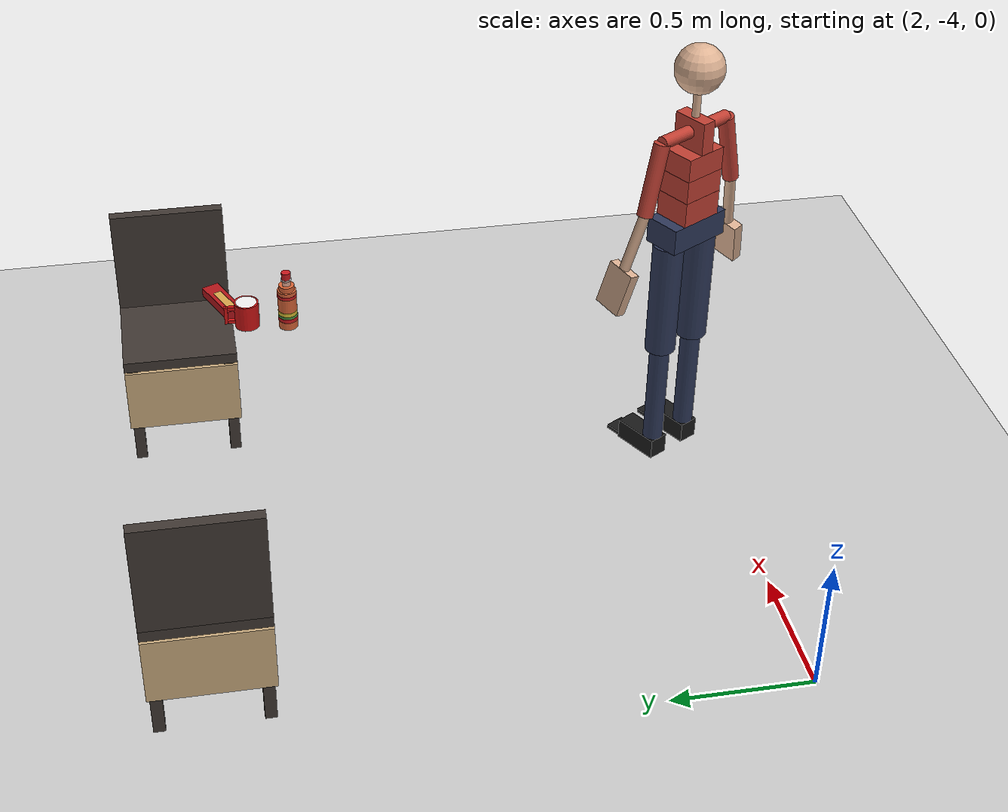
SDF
<sdf version="1.6">
 <world name="robocup_casa">
  <include><uri>model://sun</uri></include>
  <include><uri>model://ground_plane</uri></include>
  <model name="silla_o">
   <static>true</static>
   <link name="l0">
    <pose>2.346 -2.030 0.275 0 0 0.0000</pose>
    <collision name="c"><geometry><box><size>0.420 0.420 0.250</size></box></geometry></collision>
    <visual name="v">
     <geometry><box><size>0.420 0.420 0.250</size></box></geometry>
     <material><ambient>0.80 0.68 0.50 1</ambient><diffuse>0.80 0.68 0.50 1</diffuse></material>
    </visual>
   </link>
   <link name="l1">
    <pose>2.346 -2.030 0.430 0 0 0.0000</pose>
    <collision name="c"><geometry><box><size>0.420 0.420 0.040</size></box></geometry></collision>
    <visual name="v">
     <geometry><box><size>0.420 0.420 0.040</size></box></geometry>
     <material><ambient>0.25 0.22 0.20 1</ambient><diffuse>0.25 0.22 0.20 1</diffuse></material>
    </visual>
   </link>
   <link name="l2">
    <pose>2.166 -2.210 0.205 0 0 0.0000</pose>
    <collision name="c"><geometry><box><size>0.040 0.040 0.410</size></box></geometry></collision>
    <visual name="v">
     <geometry><box><size>0.040 0.040 0.410</size></box></geometry>
     <material><ambient>0.25 0.22 0.20 1</ambient><diffuse>0.25 0.22 0.20 1</diffuse></material>
    </visual>
   </link>
   <link name="l3">
    <pose>2.166 -1.850 0.205 0 0 0.0000</pose>
    <collision name="c"><geometry><box><size>0.040 0.040 0.410</size></box></geometry></collision>
    <visual name="v">
     <geometry><box><size>0.040 0.040 0.410</size></box></geometry>
     <material><ambient>0.25 0.22 0.20 1</ambient><diffuse>0.25 0.22 0.20 1</diffuse></material>
    </visual>
   </link>
   <link name="l4">
    <pose>2.526 -2.210 0.205 0 0 0.0000</pose>
    <collision name="c"><geometry><box><size>0.040 0.040 0.410</size></box></geometry></collision>
    <visual name="v">
     <geometry><box><size>0.040 0.040 0.410</size></box></geometry>
     <material><ambient>0.25 0.22 0.20 1</ambient><diffuse>0.25 0.22 0.20 1</diffuse></material>
    </visual>
   </link>
   <link name="l5">
    <pose>2.526 -1.850 0.205 0 0 0.0000</pose>
    <collision name="c"><geometry><box><size>0.040 0.040 0.410</size></box></geometry></collision>
    <visual name="v">
     <geometry><box><size>0.040 0.040 0.410</size></box></geometry>
     <material><ambient>0.25 0.22 0.20 1</ambient><diffuse>0.25 0.22 0.20 1</diffuse></material>
    </visual>
   </link>
   <link name="l6">
    <pose>2.156 -2.030 0.650 0 0 0.0000</pose>
    <collision name="c"><geometry><box><size>0.040 0.420 0.400</size></box></geometry></collision>
    <visual name="v">
     <geometry><box><size>0.040 0.420 0.400</size></box></geometry>
     <material><ambient>0.25 0.22 0.20 1</ambient><diffuse>0.25 0.22 0.20 1</diffuse></material>
    </visual>
   </link>
  </model>
  <model name="silla_e">
   <static>true</static>
   <link name="l0">
    <pose>3.786 -2.030 0.275 0 0 3.1416</pose>
    <collision name="c"><geometry><box><size>0.420 0.420 0.250</size></box></geometry></collision>
    <visual name="v">
     <geometry><box><size>0.420 0.420 0.250</size></box></geometry>
     <material><ambient>0.80 0.68 0.50 1</ambient><diffuse>0.80 0.68 0.50 1</diffuse></material>
    </visual>
   </link>
   <link name="l1">
    <pose>3.786 -2.030 0.430 0 0 3.1416</pose>
    <collision name="c"><geometry><box><size>0.420 0.420 0.040</size></box></geometry></collision>
    <visual name="v">
     <geometry><box><size>0.420 0.420 0.040</size></box></geometry>
     <material><ambient>0.25 0.22 0.20 1</ambient><diffuse>0.25 0.22 0.20 1</diffuse></material>
    </visual>
   </link>
   <link name="l2">
    <pose>3.966 -1.850 0.205 0 0 3.1416</pose>
    <collision name="c"><geometry><box><size>0.040 0.040 0.410</size></box></geometry></collision>
    <visual name="v">
     <geometry><box><size>0.040 0.040 0.410</size></box></geometry>
     <material><ambient>0.25 0.22 0.20 1</ambient><diffuse>0.25 0.22 0.20 1</diffuse></material>
    </visual>
   </link>
   <link name="l3">
    <pose>3.966 -2.210 0.205 0 0 3.1416</pose>
    <collision name="c"><geometry><box><size>0.040 0.040 0.410</size></box></geometry></collision>
    <visual name="v">
     <geometry><box><size>0.040 0.040 0.410</size></box></geometry>
     <material><ambient>0.25 0.22 0.20 1</ambient><diffuse>0.25 0.22 0.20 1</diffuse></material>
    </visual>
   </link>
   <link name="l4">
    <pose>3.606 -1.850 0.205 0 0 3.1416</pose>
    <collision name="c"><geometry><box><size>0.040 0.040 0.410</size></box></geometry></collision>
    <visual name="v">
     <geometry><box><size>0.040 0.040 0.410</size></box></geometry>
     <material><ambient>0.25 0.22 0.20 1</ambient><diffuse>0.25 0.22 0.20 1</diffuse></material>
    </visual>
   </link>
   <link name="l5">
    <pose>3.606 -2.210 0.205 0 0 3.1416</pose>
    <collision name="c"><geometry><box><size>0.040 0.040 0.410</size></box></geometry></collision>
    <visual name="v">
     <geometry><box><size>0.040 0.040 0.410</size></box></geometry>
     <material><ambient>0.25 0.22 0.20 1</ambient><diffuse>0.25 0.22 0.20 1</diffuse></material>
    </visual>
   </link>
   <link name="l6">
    <pose>3.976 -2.030 0.650 0 0 3.1416</pose>
    <collision name="c"><geometry><box><size>0.040 0.420 0.400</size></box></geometry></collision>
    <visual name="v">
     <geometry><box><size>0.040 0.420 0.400</size></box></geometry>
     <material><ambient>0.25 0.22 0.20 1</ambient><diffuse>0.25 0.22 0.20 1</diffuse></material>
    </visual>
   </link>
  </model>
  <model name="taza_comedor">
   <pose>3.313 -2.277 0.751 0 0 1.556</pose>
   <link name="link">
    <inertial>
     <pose>0 0 0.0475 0 0 0</pose>
     <mass>0.3</mass>
     <inertia>
      <ixx>3.643e-04</ixx>
      <iyy>3.643e-04</iyy>
      <izz>2.773e-04</izz>
      <ixy>0</ixy>
      <ixz>0</ixz>
      <iyz>0</iyz>
     </inertia>
    </inertial>
    <collision name="c">
     <pose>0 0 0.0475 0 0 0</pose>
     <geometry><cylinder><radius>0.0430</radius><length>0.0950</length></cylinder></geometry>
     <surface><friction><ode><mu>1.0</mu><mu2>1.0</mu2></ode></friction></surface>
    </collision>
    <visual name="v0">
     <pose>0 0 0.0475 0 0 0</pose>
     <geometry><cylinder><radius>0.0430</radius><length>0.0950</length></cylinder></geometry>
     <material><ambient>0.82 0.08 0.08 1</ambient><diffuse>0.82 0.08 0.08 1</diffuse></material>
    </visual>
    <visual name="v1">
     <pose>0 0 0.0945 0 0 0</pose>
     <geometry><cylinder><radius>0.0370</radius><length>0.0020</length></cylinder></geometry>
     <material><ambient>0.95 0.95 0.95 1</ambient><diffuse>0.95 0.95 0.95 1</diffuse></material>
    </visual>
    <visual name="v2">
     <pose>0.073 0 0.048 0 0 0</pose>
     <geometry><box><size>0.0120 0.0140 0.0660</size></box></geometry>
     <material><ambient>0.82 0.08 0.08 1</ambient><diffuse>0.82 0.08 0.08 1</diffuse></material>
    </visual>
    <visual name="v3">
     <pose>0.058 0 0.075 0 0 0</pose>
     <geometry><box><size>0.0320 0.0140 0.0120</size></box></geometry>
     <material><ambient>0.82 0.08 0.08 1</ambient><diffuse>0.82 0.08 0.08 1</diffuse></material>
    </visual>
    <visual name="v4">
     <pose>0.058 0 0.021 0 0 0</pose>
     <geometry><box><size>0.0320 0.0140 0.0120</size></box></geometry>
     <material><ambient>0.82 0.08 0.08 1</ambient><diffuse>0.82 0.08 0.08 1</diffuse></material>
    </visual>
   </link>
  </model>
  <model name="botella_comedor">
   <pose>3.285 -2.419 0.751 0 0 2.356</pose>
   <link name="link">
    <inertial>
     <pose>0 0 0.1100 0 0 0</pose>
     <mass>0.55</mass>
     <inertia>
      <ixx>2.368e-03</ixx>
      <iyy>2.368e-03</iyy>
      <izz>2.995e-04</izz>
      <ixy>0</ixy>
      <ixz>0</ixz>
      <iyz>0</iyz>
     </inertia>
    </inertial>
    <collision name="c">
     <pose>0 0 0.1100 0 0 0</pose>
     <geometry><cylinder><radius>0.0330</radius><length>0.2200</length></cylinder></geometry>
     <surface><friction><ode><mu>1.0</mu><mu2>1.0</mu2></ode></friction></surface>
    </collision>
    <visual name="v0">
     <pose>0 0 0.075 0 0 0</pose>
     <geometry><cylinder><radius>0.0330</radius><length>0.1500</length></cylinder></geometry>
     <material><ambient>0.86 0.40 0.22 1</ambient><diffuse>0.86 0.40 0.22 1</diffuse></material>
    </visual>
    <visual name="v1">
     <pose>0 0 0.16 0 0 0</pose>
     <geometry><cylinder><radius>0.0270</radius><length>0.0200</length></cylinder></geometry>
     <material><ambient>0.86 0.40 0.22 1</ambient><diffuse>0.86 0.40 0.22 1</diffuse></material>
    </visual>
    <visual name="v2">
     <pose>0 0 0.182 0 0 0</pose>
     <geometry><cylinder><radius>0.0150</radius><length>0.0250</length></cylinder></geometry>
     <transparency>0.4</transparency>
     <material><ambient>0.75 0.78 0.80 1</ambient><diffuse>0.75 0.78 0.80 1</diffuse></material>
    </visual>
    <visual name="v3">
     <pose>0 0 0.192 0 0 0</pose>
     <geometry><cylinder><radius>0.0190</radius><length>0.0040</length></cylinder></geometry>
     <transparency>0.2</transparency>
     <material><ambient>0.75 0.78 0.80 1</ambient><diffuse>0.75 0.78 0.80 1</diffuse></material>
    </visual>
    <visual name="v4">
     <pose>0 0 0.2075 0 0 0</pose>
     <geometry><cylinder><radius>0.0160</radius><length>0.0250</length></cylinder></geometry>
     <material><ambient>0.80 0.10 0.12 1</ambient><diffuse>0.80 0.10 0.12 1</diffuse></material>
    </visual>
    <visual name="v5">
     <pose>0 0 0.13 0 0 0</pose>
     <geometry><cylinder><radius>0.0340</radius><length>0.0120</length></cylinder></geometry>
     <material><ambient>0.80 0.10 0.12 1</ambient><diffuse>0.80 0.10 0.12 1</diffuse></material>
    </visual>
    <visual name="v6">
     <pose>0 0 0.0625 0 0 0</pose>
     <geometry><cylinder><radius>0.0340</radius><length>0.0150</length></cylinder></geometry>
     <material><ambient>0.85 0.75 0.20 1</ambient><diffuse>0.85 0.75 0.20 1</diffuse></material>
    </visual>
    <visual name="v7">
     <pose>0 0 0.05 0 0 0</pose>
     <geometry><cylinder><radius>0.0340</radius><length>0.0100</length></cylinder></geometry>
     <material><ambient>0.30 0.60 0.25 1</ambient><diffuse>0.30 0.60 0.25 1</diffuse></material>
    </visual>
    <visual name="v8">
     <pose>0 0 0.0375 0 0 0</pose>
     <geometry><cylinder><radius>0.0340</radius><length>0.0150</length></cylinder></geometry>
     <material><ambient>0.80 0.10 0.12 1</ambient><diffuse>0.80 0.10 0.12 1</diffuse></material>
    </visual>
   </link>
  </model>
  <model name="galletas_comedor">
   <pose>3.448 -2.200 0.751 0 0 -2.727</pose>
   <link name="link">
    <inertial>
     <pose>0 0 0.0175 0 0 0</pose>
     <mass>0.13</mass>
     <inertia>
      <ixx>5.491e-05</ixx>
      <iyy>4.044e-04</iyy>
      <izz>4.327e-04</izz>
      <ixy>0</ixy>
      <ixz>0</ixz>
      <iyz>0</iyz>
     </inertia>
    </inertial>
    <collision name="c">
     <pose>0 0 0.0175 0 0 0</pose>
     <geometry><box><size>0.1900 0.0620 0.0350</size></box></geometry>
     <surface><friction><ode><mu>1.0</mu><mu2>1.0</mu2></ode></friction></surface>
    </collision>
    <visual name="v0">
     <pose>0 0 0.0175 0 0 0</pose>
     <geometry><box><size>0.1900 0.0620 0.0350</size></box></geometry>
     <material><ambient>0.70 0.08 0.10 1</ambient><diffuse>0.70 0.08 0.10 1</diffuse></material>
    </visual>
    <visual name="v1">
     <pose>0.02 0 0.0355 0 0 0</pose>
     <geometry><box><size>0.1200 0.0300 0.0010</size></box></geometry>
     <material><ambient>0.85 0.65 0.30 1</ambient><diffuse>0.85 0.65 0.30 1</diffuse></material>
    </visual>
   </link>
  </model>
  <model name="persona_comedor">
   <static>true</static>
   <link name="cuerpo">
    <collision name="c0">
     <pose>3.3419 -3.8615 0.9823 0.0000 -0.0000 0.5190</pose>
     <geometry><box><size>0.1381 0.2491 0.0975</size></box></geometry>
    </collision>
    <visual name="v0_Pelvis">
     <pose>3.3419 -3.8615 0.9823 0.0000 -0.0000 0.5190</pose>
     <geometry><box><size>0.1381 0.2491 0.0975</size></box></geometry>
     <material><ambient>0.18 0.22 0.35 1</ambient><diffuse>0.18 0.22 0.35 1</diffuse></material>
    </visual>
    <collision name="c1">
     <pose>3.3418 -3.8616 1.0786 0.0000 -0.0000 0.5190</pose>
     <geometry><box><size>0.1381 0.1632 0.0951</size></box></geometry>
    </collision>
    <visual name="v1_L5">
     <pose>3.3418 -3.8616 1.0786 0.0000 -0.0000 0.5190</pose>
     <geometry><box><size>0.1381 0.1632 0.0951</size></box></geometry>
     <material><ambient>0.75 0.25 0.20 1</ambient><diffuse>0.75 0.25 0.20 1</diffuse></material>
    </visual>
    <collision name="c2">
     <pose>3.3421 -3.8614 1.1691 0.0000 -0.0000 0.5190</pose>
     <geometry><box><size>0.1381 0.1632 0.0859</size></box></geometry>
    </collision>
    <visual name="v2_L3">
     <pose>3.3421 -3.8614 1.1691 0.0000 -0.0000 0.5190</pose>
     <geometry><box><size>0.1381 0.1632 0.0859</size></box></geometry>
     <material><ambient>0.75 0.25 0.20 1</ambient><diffuse>0.75 0.25 0.20 1</diffuse></material>
    </visual>
    <collision name="c3">
     <pose>3.3421 -3.8614 1.2550 0.0000 -0.0000 0.5190</pose>
     <geometry><box><size>0.1381 0.1632 0.0859</size></box></geometry>
    </collision>
    <visual name="v3_T12">
     <pose>3.3421 -3.8614 1.2550 0.0000 -0.0000 0.5190</pose>
     <geometry><box><size>0.1381 0.1632 0.0859</size></box></geometry>
     <material><ambient>0.75 0.25 0.20 1</ambient><diffuse>0.75 0.25 0.20 1</diffuse></material>
    </visual>
    <collision name="c4">
     <pose>3.3421 -3.8614 1.3578 0.0000 -0.0000 0.5190</pose>
     <geometry><box><size>0.1346 0.0526 0.1197</size></box></geometry>
    </collision>
    <visual name="v4_T8">
     <pose>3.3421 -3.8614 1.3578 0.0000 -0.0000 0.5190</pose>
     <geometry><box><size>0.1346 0.0526 0.1197</size></box></geometry>
     <material><ambient>0.75 0.25 0.20 1</ambient><diffuse>0.75 0.25 0.20 1</diffuse></material>
    </visual>
    <collision name="c5">
     <pose>3.3421 -3.8614 1.4623 0.0000 -0.0000 0.5190</pose>
     <geometry><cylinder><radius>0.0142</radius><length>0.0893</length></cylinder></geometry>
    </collision>
    <visual name="v5_Neck">
     <pose>3.3421 -3.8614 1.4623 0.0000 -0.0000 0.5190</pose>
     <geometry><cylinder><radius>0.0142</radius><length>0.0893</length></cylinder></geometry>
     <material><ambient>0.87 0.70 0.58 1</ambient><diffuse>0.87 0.70 0.58 1</diffuse></material>
    </visual>
    <collision name="c6">
     <pose>3.3422 -3.8613 1.5960 0.0000 -0.0000 0.5190</pose>
     <geometry><sphere><radius>0.0890</radius></sphere></geometry>
    </collision>
    <visual name="v6_Head">
     <pose>3.3422 -3.8613 1.5960 0.0000 -0.0000 0.5190</pose>
     <geometry><sphere><radius>0.0890</radius></sphere></geometry>
     <material><ambient>0.87 0.70 0.58 1</ambient><diffuse>0.87 0.70 0.58 1</diffuse></material>
    </visual>
    <collision name="c7">
     <pose>3.3875 -3.9409 1.3650 1.5708 -0.0000 0.5190</pose>
     <geometry><cylinder><radius>0.0236</radius><length>0.1305</length></cylinder></geometry>
    </collision>
    <visual name="v7_RightShoulder">
     <pose>3.3875 -3.9409 1.3650 1.5708 -0.0000 0.5190</pose>
     <geometry><cylinder><radius>0.0236</radius><length>0.1305</length></cylinder></geometry>
     <material><ambient>0.75 0.25 0.20 1</ambient><diffuse>0.75 0.25 0.20 1</diffuse></material>
    </visual>
    <collision name="c8">
     <pose>3.4345 -4.0232 1.2333 2.9208 -0.0000 0.5190</pose>
     <geometry><cylinder><radius>0.0294</radius><length>0.2699</length></cylinder></geometry>
    </collision>
    <visual name="v8_RightUpperArm">
     <pose>3.4345 -4.0232 1.2333 2.9208 -0.0000 0.5190</pose>
     <geometry><cylinder><radius>0.0294</radius><length>0.2699</length></cylinder></geometry>
     <material><ambient>0.75 0.25 0.20 1</ambient><diffuse>0.75 0.25 0.20 1</diffuse></material>
    </visual>
    <collision name="c9">
     <pose>3.4755 -4.0616 0.9943 2.9184 -0.1463 0.5520</pose>
     <geometry><cylinder><radius>0.0196</radius><length>0.2225</length></cylinder></geometry>
    </collision>
    <visual name="v9_RightForeArm">
     <pose>3.4755 -4.0616 0.9943 2.9184 -0.1463 0.5520</pose>
     <geometry><cylinder><radius>0.0196</radius><length>0.2225</length></cylinder></geometry>
     <material><ambient>0.87 0.70 0.58 1</ambient><diffuse>0.87 0.70 0.58 1</diffuse></material>
    </visual>
    <collision name="c10">
     <pose>3.5218 -4.0837 0.8064 1.3476 -0.1463 0.5520</pose>
     <geometry><box><size>0.1114 0.1672 0.0393</size></box></geometry>
    </collision>
    <visual name="v10_RightHand">
     <pose>3.5218 -4.0837 0.8064 1.3476 -0.1463 0.5520</pose>
     <geometry><box><size>0.1114 0.1672 0.0393</size></box></geometry>
     <material><ambient>0.87 0.70 0.58 1</ambient><diffuse>0.87 0.70 0.58 1</diffuse></material>
    </visual>
    <collision name="c11">
     <pose>3.2967 -3.7819 1.3650 1.5708 -0.0000 0.5190</pose>
     <geometry><cylinder><radius>0.0236</radius><length>0.1305</length></cylinder></geometry>
    </collision>
    <visual name="v11_LeftShoulder">
     <pose>3.2967 -3.7819 1.3650 1.5708 -0.0000 0.5190</pose>
     <geometry><cylinder><radius>0.0236</radius><length>0.1305</length></cylinder></geometry>
     <material><ambient>0.75 0.25 0.20 1</ambient><diffuse>0.75 0.25 0.20 1</diffuse></material>
    </visual>
    <collision name="c12">
     <pose>3.2497 -3.6996 1.2333 0.2208 -0.0000 0.5190</pose>
     <geometry><cylinder><radius>0.0294</radius><length>0.2699</length></cylinder></geometry>
    </collision>
    <visual name="v12_LeftUpperArm">
     <pose>3.2497 -3.6996 1.2333 0.2208 -0.0000 0.5190</pose>
     <geometry><cylinder><radius>0.0294</radius><length>0.2699</length></cylinder></geometry>
     <material><ambient>0.75 0.25 0.20 1</ambient><diffuse>0.75 0.25 0.20 1</diffuse></material>
    </visual>
    <collision name="c13">
     <pose>3.2375 -3.6448 0.9943 0.2232 -0.1463 0.4859</pose>
     <geometry><cylinder><radius>0.0196</radius><length>0.2225</length></cylinder></geometry>
    </collision>
    <visual name="v13_LeftForeArm">
     <pose>3.2375 -3.6448 0.9943 0.2232 -0.1463 0.4859</pose>
     <geometry><cylinder><radius>0.0196</radius><length>0.2225</length></cylinder></geometry>
     <material><ambient>0.87 0.70 0.58 1</ambient><diffuse>0.87 0.70 0.58 1</diffuse></material>
    </visual>
    <collision name="c14">
     <pose>3.2419 -3.5937 0.8064 -1.3476 -0.1463 0.4859</pose>
     <geometry><box><size>0.1114 0.1672 0.0393</size></box></geometry>
    </collision>
    <visual name="v14_LeftHand">
     <pose>3.2419 -3.5937 0.8064 -1.3476 -0.1463 0.4859</pose>
     <geometry><box><size>0.1114 0.1672 0.0393</size></box></geometry>
     <material><ambient>0.87 0.70 0.58 1</ambient><diffuse>0.87 0.70 0.58 1</diffuse></material>
    </visual>
    <collision name="c15">
     <pose>3.3825 -3.9323 0.7091 0.0000 -0.0000 0.5190</pose>
     <geometry><cylinder><radius>0.0565</radius><length>0.4490</length></cylinder></geometry>
    </collision>
    <visual name="v15_RightUpperLeg">
     <pose>3.3825 -3.9323 0.7091 0.0000 -0.0000 0.5190</pose>
     <geometry><cylinder><radius>0.0565</radius><length>0.4490</length></cylinder></geometry>
     <material><ambient>0.18 0.22 0.35 1</ambient><diffuse>0.18 0.22 0.35 1</diffuse></material>
    </visual>
    <collision name="c16">
     <pose>3.3825 -3.9323 0.2815 0.0000 -0.0000 0.5190</pose>
     <geometry><cylinder><radius>0.0374</radius><length>0.4061</length></cylinder></geometry>
    </collision>
    <visual name="v16_RightLowerLeg">
     <pose>3.3825 -3.9323 0.2815 0.0000 -0.0000 0.5190</pose>
     <geometry><cylinder><radius>0.0374</radius><length>0.4061</length></cylinder></geometry>
     <material><ambient>0.18 0.22 0.35 1</ambient><diffuse>0.18 0.22 0.35 1</diffuse></material>
    </visual>
    <collision name="c17">
     <pose>3.4302 -3.9051 0.0393 0.0000 -0.0000 0.5190</pose>
     <geometry><box><size>0.1798 0.0748 0.0785</size></box></geometry>
    </collision>
    <visual name="v17_RightFoot">
     <pose>3.4302 -3.9051 0.0393 0.0000 -0.0000 0.5190</pose>
     <geometry><box><size>0.1798 0.0748 0.0785</size></box></geometry>
     <material><ambient>0.10 0.10 0.10 1</ambient><diffuse>0.10 0.10 0.10 1</diffuse></material>
    </visual>
    <collision name="c18">
     <pose>3.5344 -3.8456 0.0138 0.0000 -0.0000 0.5190</pose>
     <geometry><box><size>0.0602 0.0748 0.0142</size></box></geometry>
    </collision>
    <visual name="v18_RightToe">
     <pose>3.5344 -3.8456 0.0138 0.0000 -0.0000 0.5190</pose>
     <geometry><box><size>0.0602 0.0748 0.0142</size></box></geometry>
     <material><ambient>0.10 0.10 0.10 1</ambient><diffuse>0.10 0.10 0.10 1</diffuse></material>
    </visual>
    <collision name="c19">
     <pose>3.3016 -3.7906 0.7091 0.0000 -0.0000 0.5190</pose>
     <geometry><cylinder><radius>0.0565</radius><length>0.4490</length></cylinder></geometry>
    </collision>
    <visual name="v19_LeftUpperLeg">
     <pose>3.3016 -3.7906 0.7091 0.0000 -0.0000 0.5190</pose>
     <geometry><cylinder><radius>0.0565</radius><length>0.4490</length></cylinder></geometry>
     <material><ambient>0.18 0.22 0.35 1</ambient><diffuse>0.18 0.22 0.35 1</diffuse></material>
    </visual>
    <collision name="c20">
     <pose>3.3016 -3.7906 0.2815 0.0000 -0.0000 0.5190</pose>
     <geometry><cylinder><radius>0.0374</radius><length>0.4061</length></cylinder></geometry>
    </collision>
    <visual name="v20_LeftLowerLeg">
     <pose>3.3016 -3.7906 0.2815 0.0000 -0.0000 0.5190</pose>
     <geometry><cylinder><radius>0.0374</radius><length>0.4061</length></cylinder></geometry>
     <material><ambient>0.18 0.22 0.35 1</ambient><diffuse>0.18 0.22 0.35 1</diffuse></material>
    </visual>
    <collision name="c21">
     <pose>3.3492 -3.7633 0.0393 0.0000 -0.0000 0.5190</pose>
     <geometry><box><size>0.1798 0.0748 0.0785</size></box></geometry>
    </collision>
    <visual name="v21_LeftFoot">
     <pose>3.3492 -3.7633 0.0393 0.0000 -0.0000 0.5190</pose>
     <geometry><box><size>0.1798 0.0748 0.0785</size></box></geometry>
     <material><ambient>0.10 0.10 0.10 1</ambient><diffuse>0.10 0.10 0.10 1</diffuse></material>
    </visual>
    <collision name="c22">
     <pose>3.4534 -3.7038 0.0138 0.0000 -0.0000 0.5190</pose>
     <geometry><box><size>0.0602 0.0748 0.0142</size></box></geometry>
    </collision>
    <visual name="v22_LeftToe">
     <pose>3.4534 -3.7038 0.0138 0.0000 -0.0000 0.5190</pose>
     <geometry><box><size>0.0602 0.0748 0.0142</size></box></geometry>
     <material><ambient>0.10 0.10 0.10 1</ambient><diffuse>0.10 0.10 0.10 1</diffuse></material>
    </visual>
   </link>
  </model>
 </world>
</sdf>
